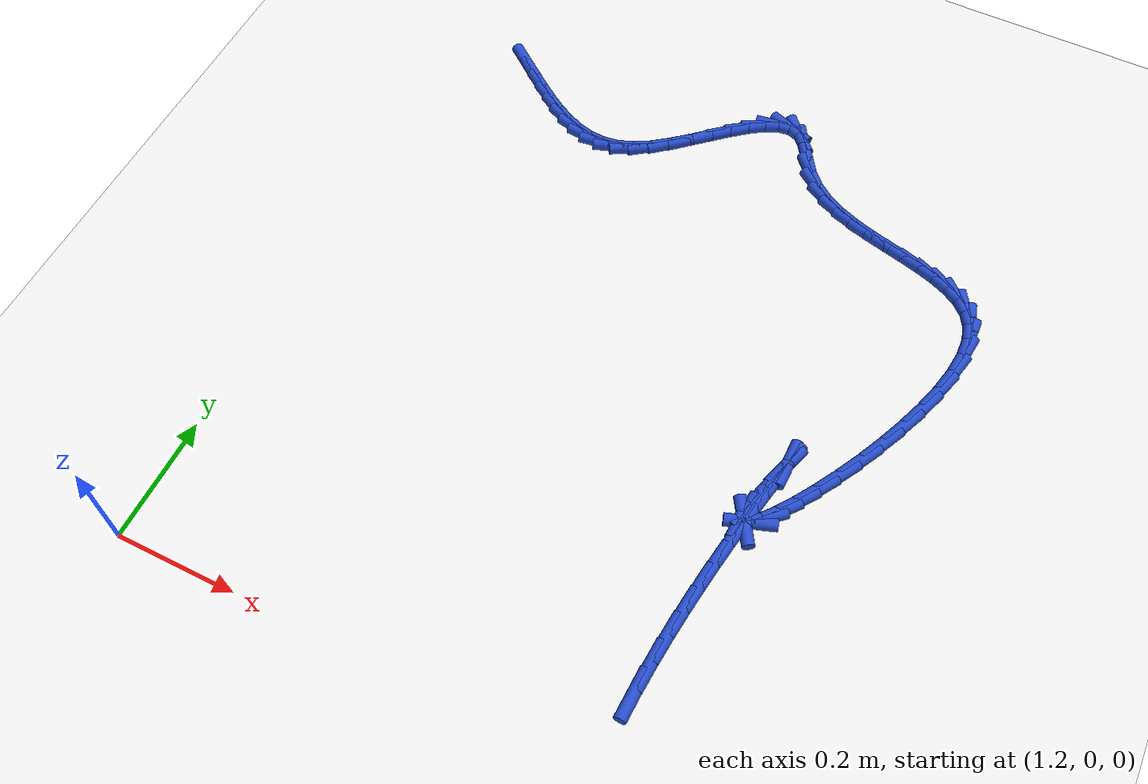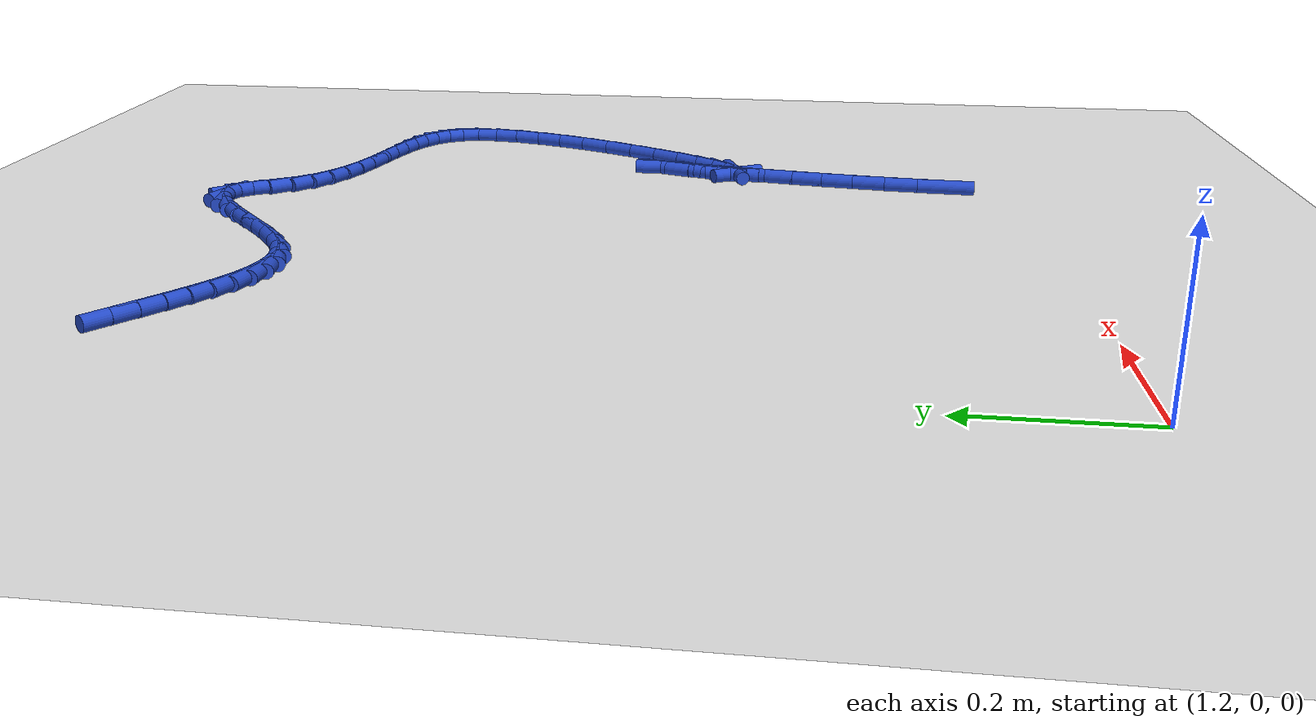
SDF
<sdf version="1.6">
 <world name="default">
  <model name="ground_plane">
   <static>1</static>
   <link name="link">
    <collision name="collision">
     <geometry><plane><normal>0 0 1</normal><size>100 100</size></plane></geometry>
     <surface><friction><ode><mu>100</mu><mu2>50</mu2></ode></friction></surface>
    </collision>
    <visual name="visual">
     <cast_shadows>0</cast_shadows>
     <geometry><plane><normal>0 0 1</normal><size>100 100</size></plane></geometry>
     <material>
      <script><uri>file://media/materials/scripts/gazebo.material</uri><name>Gazebo/WhiteGlow</name></script>
     </material>
    </visual>
   </link>
  </model>
  <model name="line">
   <link name="link_78">
    <pose>1.3200268461189721 1.0632900898511553 0.01 0 1.57 -0.6524890521754039</pose>
    <collision name="collision">
     <geometry><cylinder><radius>0.01</radius><length>0.08</length></cylinder></geometry>
    </collision>
    <visual name="visual">
     <material>
      <script><name>Gazebo/Blue</name><uri>file://media/materials/scripts/gazebo.material</uri></script>
     </material>
     <geometry><cylinder><radius>0.01</radius><length>0.08</length></cylinder></geometry>
    </visual>
   </link>
   <link name="link_79">
    <pose>1.3461349972345178 1.043339824095674 0.01 0 1.57 -0.6459319004834038</pose>
    <collision name="collision">
     <geometry><cylinder><radius>0.01</radius><length>0.08</length></cylinder></geometry>
    </collision>
    <visual name="visual">
     <material>
      <script><name>Gazebo/Blue</name><uri>file://media/materials/scripts/gazebo.material</uri></script>
     </material>
     <geometry><cylinder><radius>0.01</radius><length>0.08</length></cylinder></geometry>
    </visual>
   </link>
   <link name="link_80">
    <pose>1.371570158942668 1.0241666705875578 0.01 0 1.57 -0.6196629176166212</pose>
    <collision name="collision">
     <geometry><cylinder><radius>0.01</radius><length>0.08</length></cylinder></geometry>
    </collision>
    <visual name="visual">
     <material>
      <script><name>Gazebo/Blue</name><uri>file://media/materials/scripts/gazebo.material</uri></script>
     </material>
     <geometry><cylinder><radius>0.01</radius><length>0.08</length></cylinder></geometry>
    </visual>
   </link>
   <link name="link_81">
    <pose>1.3964961642730223 1.0063844522223258 0.01 0 1.57 -0.5706345906195713</pose>
    <collision name="collision">
     <geometry><cylinder><radius>0.01</radius><length>0.08</length></cylinder></geometry>
    </collision>
    <visual name="visual">
     <material>
      <script><name>Gazebo/Blue</name><uri>file://media/materials/scripts/gazebo.material</uri></script>
     </material>
     <geometry><cylinder><radius>0.01</radius><length>0.08</length></cylinder></geometry>
    </visual>
   </link>
   <link name="link_82">
    <pose>1.4210768462551797 0.9906069918954976 0.01 0 1.57 -0.4946036932100912</pose>
    <collision name="collision">
     <geometry><cylinder><radius>0.01</radius><length>0.08</length></cylinder></geometry>
    </collision>
    <visual name="visual">
     <material>
      <script><name>Gazebo/Blue</name><uri>file://media/materials/scripts/gazebo.material</uri></script>
     </material>
     <geometry><cylinder><radius>0.01</radius><length>0.08</length></cylinder></geometry>
    </visual>
   </link>
   <link name="link_83">
    <pose>1.445476037918739 0.9774481125025931 0.01 0 1.57 -0.3866385325265861</pose>
    <collision name="collision">
     <geometry><cylinder><radius>0.01</radius><length>0.08</length></cylinder></geometry>
    </collision>
    <visual name="visual">
     <material>
      <script><name>Gazebo/Blue</name><uri>file://media/materials/scripts/gazebo.material</uri></script>
     </material>
     <geometry><cylinder><radius>0.01</radius><length>0.08</length></cylinder></geometry>
    </visual>
   </link>
   <link name="link_84">
    <pose>1.4698575722933 0.967521636939132 0.01 0 1.57 -0.24299466918522217</pose>
    <collision name="collision">
     <geometry><cylinder><radius>0.01</radius><length>0.08</length></cylinder></geometry>
    </collision>
    <visual name="visual">
     <material>
      <script><name>Gazebo/Blue</name><uri>file://media/materials/scripts/gazebo.material</uri></script>
     </material>
     <geometry><cylinder><radius>0.01</radius><length>0.08</length></cylinder></geometry>
    </visual>
   </link>
   <link name="link_85">
    <pose>1.4943852824084614 0.9614413881006337 0.01 0 1.57 -0.06513911438292037</pose>
    <collision name="collision">
     <geometry><cylinder><radius>0.01</radius><length>0.08</length></cylinder></geometry>
    </collision>
    <visual name="visual">
     <material>
      <script><name>Gazebo/Blue</name><uri>file://media/materials/scripts/gazebo.material</uri></script>
     </material>
     <geometry><cylinder><radius>0.01</radius><length>0.08</length></cylinder></geometry>
    </visual>
   </link>
   <link name="link_86">
    <pose>1.5192230012938235 0.9598211888826181 0.01 0 1.57 0.13560904200264787</pose>
    <collision name="collision">
     <geometry><cylinder><radius>0.01</radius><length>0.08</length></cylinder></geometry>
    </collision>
    <visual name="visual">
     <material>
      <script><name>Gazebo/Blue</name><uri>file://media/materials/scripts/gazebo.material</uri></script>
     </material>
     <geometry><cylinder><radius>0.01</radius><length>0.08</length></cylinder></geometry>
    </visual>
   </link>
   <link name="link_87">
    <pose>1.544534561978984 0.9632748621806044 0.01 0 1.57 0.3387035948976082</pose>
    <collision name="collision">
     <geometry><cylinder><radius>0.01</radius><length>0.08</length></cylinder></geometry>
    </collision>
    <visual name="visual">
     <material>
      <script><name>Gazebo/Blue</name><uri>file://media/materials/scripts/gazebo.material</uri></script>
     </material>
     <geometry><cylinder><radius>0.01</radius><length>0.08</length></cylinder></geometry>
    </visual>
   </link>
   <link name="link_88">
    <pose>1.570483797493543 0.9724162308901125 0.01 0 1.57 0.5162864080129157</pose>
    <collision name="collision">
     <geometry><cylinder><radius>0.01</radius><length>0.08</length></cylinder></geometry>
    </collision>
    <visual name="visual">
     <material>
      <script><name>Gazebo/Blue</name><uri>file://media/materials/scripts/gazebo.material</uri></script>
     </material>
     <geometry><cylinder><radius>0.01</radius><length>0.08</length></cylinder></geometry>
    </visual>
   </link>
   <link name="link_89">
    <pose>1.597171404774297 0.9875652179708097 0.01 0 1.57 0.6317423334372204</pose>
    <collision name="collision">
     <geometry><cylinder><radius>0.01</radius><length>0.08</length></cylinder></geometry>
    </collision>
    <visual name="visual">
     <material>
      <script><name>Gazebo/Blue</name><uri>file://media/materials/scripts/gazebo.material</uri></script>
     </material>
     <geometry><cylinder><radius>0.01</radius><length>0.08</length></cylinder></geometry>
    </visual>
   </link>
   <link name="link_90">
    <pose>1.6243583425627053 1.0074602574212288 0.01 0 1.57 0.6962913633375232</pose>
    <collision name="collision">
     <geometry><cylinder><radius>0.01</radius><length>0.08</length></cylinder></geometry>
    </collision>
    <visual name="visual">
     <material>
      <script><name>Gazebo/Blue</name><uri>file://media/materials/scripts/gazebo.material</uri></script>
     </material>
     <geometry><cylinder><radius>0.01</radius><length>0.08</length></cylinder></geometry>
    </visual>
   </link>
   <link name="link_91">
    <pose>1.651691794757522 1.0303101587812464 0.01 0 1.57 0.7245842931786863</pose>
    <collision name="collision">
     <geometry><cylinder><radius>0.01</radius><length>0.08</length></cylinder></geometry>
    </collision>
    <visual name="visual">
     <material>
      <script><name>Gazebo/Blue</name><uri>file://media/materials/scripts/gazebo.material</uri></script>
     </material>
     <geometry><cylinder><radius>0.01</radius><length>0.08</length></cylinder></geometry>
    </visual>
   </link>
   <link name="link_92">
    <pose>1.678818863416057 1.054323350616963 0.01 0 1.57 0.7217663789422315</pose>
    <collision name="collision">
     <geometry><cylinder><radius>0.01</radius><length>0.08</length></cylinder></geometry>
    </collision>
    <visual name="visual">
     <material>
      <script><name>Gazebo/Blue</name><uri>file://media/materials/scripts/gazebo.material</uri></script>
     </material>
     <geometry><cylinder><radius>0.01</radius><length>0.08</length></cylinder></geometry>
    </visual>
   </link>
   <link name="link_93">
    <pose>1.7053866505956194 1.0777082614944802 0.01 0 1.57 0.6851246518421864</pose>
    <collision name="collision">
     <geometry><cylinder><radius>0.01</radius><length>0.08</length></cylinder></geometry>
    </collision>
    <visual name="visual">
     <material>
      <script><name>Gazebo/Blue</name><uri>file://media/materials/scripts/gazebo.material</uri></script>
     </material>
     <geometry><cylinder><radius>0.01</radius><length>0.08</length></cylinder></geometry>
    </visual>
   </link>
   <link name="link_94">
    <pose>1.7310422583535197 1.098673319979899 0.01 0 1.57 0.6018736579693608</pose>
    <collision name="collision">
     <geometry><cylinder><radius>0.01</radius><length>0.08</length></cylinder></geometry>
    </collision>
    <visual name="visual">
     <material>
      <script><name>Gazebo/Blue</name><uri>file://media/materials/scripts/gazebo.material</uri></script>
     </material>
     <geometry><cylinder><radius>0.01</radius><length>0.08</length></cylinder></geometry>
    </visual>
   </link>
   <link name="link_95">
    <pose>1.7554327887470655 1.11542695463932 0.01 0 1.57 0.4410693456882203</pose>
    <collision name="collision">
     <geometry><cylinder><radius>0.01</radius><length>0.08</length></cylinder></geometry>
    </collision>
    <visual name="visual">
     <material>
      <script><name>Gazebo/Blue</name><uri>file://media/materials/scripts/gazebo.material</uri></script>
     </material>
     <geometry><cylinder><radius>0.01</radius><length>0.08</length></cylinder></geometry>
    </visual>
   </link>
   <link name="link_96">
    <pose>1.7782053438335679 1.1261775940388445 0.01 0 1.57 0.1411622194411599</pose>
    <collision name="collision">
     <geometry><cylinder><radius>0.01</radius><length>0.08</length></cylinder></geometry>
    </collision>
    <visual name="visual">
     <material>
      <script><name>Gazebo/Blue</name><uri>file://media/materials/scripts/gazebo.material</uri></script>
     </material>
     <geometry><cylinder><radius>0.01</radius><length>0.08</length></cylinder></geometry>
    </visual>
   </link>
   <link name="link_97">
    <pose>1.7990070256703357 1.129133666744574 0.01 0 1.57 -0.3445020132725318</pose>
    <collision name="collision">
     <geometry><cylinder><radius>0.01</radius><length>0.08</length></cylinder></geometry>
    </collision>
    <visual name="visual">
     <material>
      <script><name>Gazebo/Blue</name><uri>file://media/materials/scripts/gazebo.material</uri></script>
     </material>
     <geometry><cylinder><radius>0.01</radius><length>0.08</length></cylinder></geometry>
    </visual>
   </link>
   <link name="link_98">
    <pose>1.8174849363146772 1.1225036013226084 0.01 0 1.57 -0.8250697182488265</pose>
    <collision name="collision">
     <geometry><cylinder><radius>0.01</radius><length>0.08</length></cylinder></geometry>
    </collision>
    <visual name="visual">
     <material>
      <script><name>Gazebo/Blue</name><uri>file://media/materials/scripts/gazebo.material</uri></script>
     </material>
     <geometry><cylinder><radius>0.01</radius><length>0.08</length></cylinder></geometry>
    </visual>
   </link>
   <link name="link_99">
    <pose>1.8335256061962149 1.105136913918001 0.01 0 1.57 -1.0157042291439773</pose>
    <collision name="collision">
     <geometry><cylinder><radius>0.01</radius><length>0.08</length></cylinder></geometry>
    </collision>
    <visual name="visual">
     <material>
      <script><name>Gazebo/Blue</name><uri>file://media/materials/scripts/gazebo.material</uri></script>
     </material>
     <geometry><cylinder><radius>0.01</radius><length>0.08</length></cylinder></geometry>
    </visual>
   </link>
   <link name="link_100">
    <pose>1.8487638745394925 1.0805643497289035 0.01 0 1.57 -0.9988780504687981</pose>
    <collision name="collision">
     <geometry><cylinder><radius>0.01</radius><length>0.08</length></cylinder></geometry>
    </collision>
    <visual name="visual">
     <material>
      <script><name>Gazebo/Blue</name><uri>file://media/materials/scripts/gazebo.material</uri></script>
     </material>
     <geometry><cylinder><radius>0.01</radius><length>0.08</length></cylinder></geometry>
    </visual>
   </link>
   <link name="link_101">
    <pose>1.865609951972915 1.0543927695419848 0.01 0 1.57 -0.8342507084361291</pose>
    <collision name="collision">
     <geometry><cylinder><radius>0.01</radius><length>0.08</length></cylinder></geometry>
    </collision>
    <visual name="visual">
     <material>
      <script><name>Gazebo/Blue</name><uri>file://media/materials/scripts/gazebo.material</uri></script>
     </material>
     <geometry><cylinder><radius>0.01</radius><length>0.08</length></cylinder></geometry>
    </visual>
   </link>
   <link name="link_102">
    <pose>1.8861995797914783 1.0316863346306735 0.01 0 1.57 -0.6410036862653944</pose>
    <collision name="collision">
     <geometry><cylinder><radius>0.01</radius><length>0.08</length></cylinder></geometry>
    </collision>
    <visual name="visual">
     <material>
      <script><name>Gazebo/Blue</name><uri>file://media/materials/scripts/gazebo.material</uri></script>
     </material>
     <geometry><cylinder><radius>0.01</radius><length>0.08</length></cylinder></geometry>
    </visual>
   </link>
   <link name="link_103">
    <pose>1.9106292770755546 1.0134592137585017 0.01 0 1.57 -0.4869155585262102</pose>
    <collision name="collision">
     <geometry><cylinder><radius>0.01</radius><length>0.08</length></cylinder></geometry>
    </collision>
    <visual name="visual">
     <material>
      <script><name>Gazebo/Blue</name><uri>file://media/materials/scripts/gazebo.material</uri></script>
     </material>
     <geometry><cylinder><radius>0.01</radius><length>0.08</length></cylinder></geometry>
    </visual>
   </link>
   <link name="link_104">
    <pose>1.9380874260851664 0.998921972680952 0.01 0 1.57 -0.37400254593243265</pose>
    <collision name="collision">
     <geometry><cylinder><radius>0.01</radius><length>0.08</length></cylinder></geometry>
    </collision>
    <visual name="visual">
     <material>
      <script><name>Gazebo/Blue</name><uri>file://media/materials/scripts/gazebo.material</uri></script>
     </material>
     <geometry><cylinder><radius>0.01</radius><length>0.08</length></cylinder></geometry>
    </visual>
   </link>
   <link name="link_105">
    <pose>1.96775824927101 0.9872769155739198 0.01 0 1.57 -0.2982422312502217</pose>
    <collision name="collision">
     <geometry><cylinder><radius>0.01</radius><length>0.08</length></cylinder></geometry>
    </collision>
    <visual name="visual">
     <material>
      <script><name>Gazebo/Blue</name><uri>file://media/materials/scripts/gazebo.material</uri></script>
     </material>
     <geometry><cylinder><radius>0.01</radius><length>0.08</length></cylinder></geometry>
    </visual>
   </link>
   <link name="link_106">
    <pose>1.9988259690837777 0.9777263466132997 0.01 0 1.57 -0.2551101403753533</pose>
    <collision name="collision">
     <geometry><cylinder><radius>0.01</radius><length>0.08</length></cylinder></geometry>
    </collision>
    <visual name="visual">
     <material>
      <script><name>Gazebo/Blue</name><uri>file://media/materials/scripts/gazebo.material</uri></script>
     </material>
     <geometry><cylinder><radius>0.01</radius><length>0.08</length></cylinder></geometry>
    </visual>
   </link>
   <link name="link_107">
    <pose>2.0304748079741657 0.9694725699749869 0.01 0 1.57 -0.24201445845887298</pose>
    <collision name="collision">
     <geometry><cylinder><radius>0.01</radius><length>0.08</length></cylinder></geometry>
    </collision>
    <visual name="visual">
     <material>
      <script><name>Gazebo/Blue</name><uri>file://media/materials/scripts/gazebo.material</uri></script>
     </material>
     <geometry><cylinder><radius>0.01</radius><length>0.08</length></cylinder></geometry>
    </visual>
   </link>
   <link name="link_108">
    <pose>2.0618889883928677 0.9617178898348766 0.01 0 1.57 -0.25925765828328784</pose>
    <collision name="collision">
     <geometry><cylinder><radius>0.01</radius><length>0.08</length></cylinder></geometry>
    </collision>
    <visual name="visual">
     <material>
      <script><name>Gazebo/Blue</name><uri>file://media/materials/scripts/gazebo.material</uri></script>
     </material>
     <geometry><cylinder><radius>0.01</radius><length>0.08</length></cylinder></geometry>
    </visual>
   </link>
   <link name="link_109">
    <pose>2.0922527327905787 0.9536646103688633 0.01 0 1.57 -0.3106691930839133</pose>
    <collision name="collision">
     <geometry><cylinder><radius>0.01</radius><length>0.08</length></cylinder></geometry>
    </collision>
    <visual name="visual">
     <material>
      <script><name>Gazebo/Blue</name><uri>file://media/materials/scripts/gazebo.material</uri></script>
     </material>
     <geometry><cylinder><radius>0.01</radius><length>0.08</length></cylinder></geometry>
    </visual>
   </link>
   <link name="link_110">
    <pose>2.1207502636179942 0.9445150357528425 0.01 0 1.57 -0.4042293268773208</pose>
    <collision name="collision">
     <geometry><cylinder><radius>0.01</radius><length>0.08</length></cylinder></geometry>
    </collision>
    <visual name="visual">
     <material>
      <script><name>Gazebo/Blue</name><uri>file://media/materials/scripts/gazebo.material</uri></script>
     </material>
     <geometry><cylinder><radius>0.01</radius><length>0.08</length></cylinder></geometry>
    </visual>
   </link>
   <link name="link_111">
    <pose>2.146565803325807 0.9334714701627091 0.01 0 1.57 -0.5516952630583732</pose>
    <collision name="collision">
     <geometry><cylinder><radius>0.01</radius><length>0.08</length></cylinder></geometry>
    </collision>
    <visual name="visual">
     <material>
      <script><name>Gazebo/Blue</name><uri>file://media/materials/scripts/gazebo.material</uri></script>
     </material>
     <geometry><cylinder><radius>0.01</radius><length>0.08</length></cylinder></geometry>
    </visual>
   </link>
   <link name="link_112">
    <pose>2.168883574364714 0.9197362177743584 0.01 0 1.57 -0.7632724802327792</pose>
    <collision name="collision">
     <geometry><cylinder><radius>0.01</radius><length>0.08</length></cylinder></geometry>
    </collision>
    <visual name="visual">
     <material>
      <script><name>Gazebo/Blue</name><uri>file://media/materials/scripts/gazebo.material</uri></script>
     </material>
     <geometry><cylinder><radius>0.01</radius><length>0.08</length></cylinder></geometry>
    </visual>
   </link>
   <link name="link_113">
    <pose>2.186887799185408 0.9025115827636847 0.01 0 1.57 -1.0314756871550304</pose>
    <collision name="collision">
     <geometry><cylinder><radius>0.01</radius><length>0.08</length></cylinder></geometry>
    </collision>
    <visual name="visual">
     <material>
      <script><name>Gazebo/Blue</name><uri>file://media/materials/scripts/gazebo.material</uri></script>
     </material>
     <geometry><cylinder><radius>0.01</radius><length>0.08</length></cylinder></geometry>
    </visual>
   </link>
   <link name="link_114">
    <pose>2.199762700238585 0.880999869306584 0.01 0 1.57 -1.315421879699178</pose>
    <collision name="collision">
     <geometry><cylinder><radius>0.01</radius><length>0.08</length></cylinder></geometry>
    </collision>
    <visual name="visual">
     <material>
      <script><name>Gazebo/Blue</name><uri>file://media/materials/scripts/gazebo.material</uri></script>
     </material>
     <geometry><cylinder><radius>0.01</radius><length>0.08</length></cylinder></geometry>
    </visual>
   </link>
   <link name="link_115">
    <pose>2.206703135311208 0.8544157728007566 0.01 0 1.57 -1.5455411147185274</pose>
    <collision name="collision">
     <geometry><cylinder><radius>0.01</radius><length>0.08</length></cylinder></geometry>
    </collision>
    <visual name="visual">
     <material>
      <script><name>Gazebo/Blue</name><uri>file://media/materials/scripts/gazebo.material</uri></script>
     </material>
     <geometry><cylinder><radius>0.01</radius><length>0.08</length></cylinder></geometry>
    </visual>
   </link>
   <link name="link_116">
    <pose>2.207504946082009 0.8226741944968848 0.01 0 1.57 1.4426109005076286</pose>
    <collision name="collision">
     <geometry><cylinder><radius>0.01</radius><length>0.08</length></cylinder></geometry>
    </collision>
    <visual name="visual">
     <material>
      <script><name>Gazebo/Blue</name><uri>file://media/materials/scripts/gazebo.material</uri></script>
     </material>
     <geometry><cylinder><radius>0.01</radius><length>0.08</length></cylinder></geometry>
    </visual>
   </link>
   <link name="link_117">
    <pose>2.2028747511127036 0.7867511810656314 0.01 0 1.57 1.337431334722782</pose>
    <collision name="collision">
     <geometry><cylinder><radius>0.01</radius><length>0.08</length></cylinder></geometry>
    </collision>
    <visual name="visual">
     <material>
      <script><name>Gazebo/Blue</name><uri>file://media/materials/scripts/gazebo.material</uri></script>
     </material>
     <geometry><cylinder><radius>0.01</radius><length>0.08</length></cylinder></geometry>
    </visual>
   </link>
   <link name="link_118">
    <pose>2.1935951395748035 0.7477112924745345 0.01 0 1.57 1.261161071855949</pose>
    <collision name="collision">
     <geometry><cylinder><radius>0.01</radius><length>0.08</length></cylinder></geometry>
    </collision>
    <visual name="visual">
     <material>
      <script><name>Gazebo/Blue</name><uri>file://media/materials/scripts/gazebo.material</uri></script>
     </material>
     <geometry><cylinder><radius>0.01</radius><length>0.08</length></cylinder></geometry>
    </visual>
   </link>
   <link name="link_119">
    <pose>2.1804487006398183 0.7066190886911354 0.01 0 1.57 1.2026689516204563</pose>
    <collision name="collision">
     <geometry><cylinder><radius>0.01</radius><length>0.08</length></cylinder></geometry>
    </collision>
    <visual name="visual">
     <material>
      <script><name>Gazebo/Blue</name><uri>file://media/materials/scripts/gazebo.material</uri></script>
     </material>
     <geometry><cylinder><radius>0.01</radius><length>0.08</length></cylinder></geometry>
    </visual>
   </link>
   <link name="link_120">
    <pose>2.1642180234792576 0.6645391296829734 0.01 0 1.57 1.1552738823661313</pose>
    <collision name="collision">
     <geometry><cylinder><radius>0.01</radius><length>0.08</length></cylinder></geometry>
    </collision>
    <visual name="visual">
     <material>
      <script><name>Gazebo/Blue</name><uri>file://media/materials/scripts/gazebo.material</uri></script>
     </material>
     <geometry><cylinder><radius>0.01</radius><length>0.08</length></cylinder></geometry>
    </visual>
   </link>
   <link name="link_121">
    <pose>2.1456856972646294 0.6225359754175885 0.01 0 1.57 1.1146063797815084</pose>
    <collision name="collision">
     <geometry><cylinder><radius>0.01</radius><length>0.08</length></cylinder></geometry>
    </collision>
    <visual name="visual">
     <material>
      <script><name>Gazebo/Blue</name><uri>file://media/materials/scripts/gazebo.material</uri></script>
     </material>
     <geometry><cylinder><radius>0.01</radius><length>0.08</length></cylinder></geometry>
    </visual>
   </link>
   <link name="link_122">
    <pose>2.1256343111674467 0.581674185862521 0.01 0 1.57 1.0773933736082426</pose>
    <collision name="collision">
     <geometry><cylinder><radius>0.01</radius><length>0.08</length></cylinder></geometry>
    </collision>
    <visual name="visual">
     <material>
      <script><name>Gazebo/Blue</name><uri>file://media/materials/scripts/gazebo.material</uri></script>
     </material>
     <geometry><cylinder><radius>0.01</radius><length>0.08</length></cylinder></geometry>
    </visual>
   </link>
   <link name="link_123">
    <pose>2.104846454359217 0.5430183209853104 0.01 0 1.57 1.0406103279412506</pose>
    <collision name="collision">
     <geometry><cylinder><radius>0.01</radius><length>0.08</length></cylinder></geometry>
    </collision>
    <visual name="visual">
     <material>
      <script><name>Gazebo/Blue</name><uri>file://media/materials/scripts/gazebo.material</uri></script>
     </material>
     <geometry><cylinder><radius>0.01</radius><length>0.08</length></cylinder></geometry>
    </visual>
   </link>
   <link name="link_124">
    <pose>2.0841047160114523 0.5076329407534974 0.01 0 1.57 1.0005511523506996</pose>
    <collision name="collision">
     <geometry><cylinder><radius>0.01</radius><length>0.08</length></cylinder></geometry>
    </collision>
    <visual name="visual">
     <material>
      <script><name>Gazebo/Blue</name><uri>file://media/materials/scripts/gazebo.material</uri></script>
     </material>
     <geometry><cylinder><radius>0.01</radius><length>0.08</length></cylinder></geometry>
    </visual>
   </link>
   <link name="link_125">
    <pose>2.06419168529566 0.4765826051346204 0.01 0 1.57 0.9510689238045408</pose>
    <collision name="collision">
     <geometry><cylinder><radius>0.01</radius><length>0.08</length></cylinder></geometry>
    </collision>
    <visual name="visual">
     <material>
      <script><name>Gazebo/Blue</name><uri>file://media/materials/scripts/gazebo.material</uri></script>
     </material>
     <geometry><cylinder><radius>0.01</radius><length>0.08</length></cylinder></geometry>
    </visual>
   </link>
   <link name="link_126">
    <pose>2.0458899513833506 0.4509318740962204 0.01 0 1.57 0.878553412855046</pose>
    <collision name="collision">
     <geometry><cylinder><radius>0.01</radius><length>0.08</length></cylinder></geometry>
    </collision>
    <visual name="visual">
     <material>
      <script><name>Gazebo/Blue</name><uri>file://media/materials/scripts/gazebo.material</uri></script>
     </material>
     <geometry><cylinder><radius>0.01</radius><length>0.08</length></cylinder></geometry>
    </visual>
   </link>
   <link name="link_127">
    <pose>2.029982103446035 0.4317453076058369 0.01 0 1.57 0.7414099365345411</pose>
    <collision name="collision">
     <geometry><cylinder><radius>0.01</radius><length>0.08</length></cylinder></geometry>
    </collision>
    <visual name="visual">
     <material>
      <script><name>Gazebo/Blue</name><uri>file://media/materials/scripts/gazebo.material</uri></script>
     </material>
     <geometry><cylinder><radius>0.01</radius><length>0.08</length></cylinder></geometry>
    </visual>
   </link>
   <link name="link_128">
    <pose>2.017250730655222 0.42008746563101 0.01 0 1.57 0.3360907127938904</pose>
    <collision name="collision">
     <geometry><cylinder><radius>0.01</radius><length>0.08</length></cylinder></geometry>
    </collision>
    <visual name="visual">
     <material>
      <script><name>Gazebo/Blue</name><uri>file://media/materials/scripts/gazebo.material</uri></script>
     </material>
     <geometry><cylinder><radius>0.01</radius><length>0.08</length></cylinder></geometry>
    </visual>
   </link>
   <link name="link_129">
    <pose>2.0084784221824217 0.41702290813927956 0.01 0 1.57 -1.0220896815422122</pose>
    <collision name="collision">
     <geometry><cylinder><radius>0.01</radius><length>0.08</length></cylinder></geometry>
    </collision>
    <visual name="visual">
     <material>
      <script><name>Gazebo/Blue</name><uri>file://media/materials/scripts/gazebo.material</uri></script>
     </material>
     <geometry><cylinder><radius>0.01</radius><length>0.08</length></cylinder></geometry>
    </visual>
   </link>
   <link name="link_130">
    <pose>2.0044477671991436 0.4236161950981855 0.01 0 1.57 1.4847529848974095</pose>
    <collision name="collision">
     <geometry><cylinder><radius>0.01</radius><length>0.08</length></cylinder></geometry>
    </collision>
    <visual name="visual">
     <material>
      <script><name>Gazebo/Blue</name><uri>file://media/materials/scripts/gazebo.material</uri></script>
     </material>
     <geometry><cylinder><radius>0.01</radius><length>0.08</length></cylinder></geometry>
    </visual>
   </link>
   <link name="link_131">
    <pose>2.005941354876898 0.4409318864752677 0.01 0 1.57 1.3228453114978371</pose>
    <collision name="collision">
     <geometry><cylinder><radius>0.01</radius><length>0.08</length></cylinder></geometry>
    </collision>
    <visual name="visual">
     <material>
      <script><name>Gazebo/Blue</name><uri>file://media/materials/scripts/gazebo.material</uri></script>
     </material>
     <geometry><cylinder><radius>0.01</radius><length>0.08</length></cylinder></geometry>
    </visual>
   </link>
   <link name="link_132">
    <pose>2.0127874190386694 0.46797427519075396 0.01 0 1.57 1.2862570661377455</pose>
    <collision name="collision">
     <geometry><cylinder><radius>0.01</radius><length>0.08</length></cylinder></geometry>
    </collision>
    <visual name="visual">
     <material>
      <script><name>Gazebo/Blue</name><uri>file://media/materials/scripts/gazebo.material</uri></script>
     </material>
     <geometry><cylinder><radius>0.01</radius><length>0.08</length></cylinder></geometry>
    </visual>
   </link>
   <link name="link_133">
    <pose>2.0205776281807477 0.4946097104363076 0.01 0 1.57 1.284648860940813</pose>
    <collision name="collision">
     <geometry><cylinder><radius>0.01</radius><length>0.08</length></cylinder></geometry>
    </collision>
    <visual name="visual">
     <material>
      <script><name>Gazebo/Blue</name><uri>file://media/materials/scripts/gazebo.material</uri></script>
     </material>
     <geometry><cylinder><radius>0.01</radius><length>0.08</length></cylinder></geometry>
    </visual>
   </link>
   <link name="link_134">
    <pose>2.026240387520565 0.5138562647752833 0.01 0 1.57 1.2797944204410414</pose>
    <collision name="collision">
     <geometry><cylinder><radius>0.01</radius><length>0.08</length></cylinder></geometry>
    </collision>
    <visual name="visual">
     <material>
      <script><name>Gazebo/Blue</name><uri>file://media/materials/scripts/gazebo.material</uri></script>
     </material>
     <geometry><cylinder><radius>0.01</radius><length>0.08</length></cylinder></geometry>
    </visual>
   </link>
   <link name="link_135">
    <pose>2.0297967452396253 0.5257304129483511 0.01 0 1.57 1.2471342441266347</pose>
    <collision name="collision">
     <geometry><cylinder><radius>0.01</radius><length>0.08</length></cylinder></geometry>
    </collision>
    <visual name="visual">
     <material>
      <script><name>Gazebo/Blue</name><uri>file://media/materials/scripts/gazebo.material</uri></script>
     </material>
     <geometry><cylinder><radius>0.01</radius><length>0.08</length></cylinder></geometry>
    </visual>
   </link>
   <link name="link_136">
    <pose>2.031453192515019 0.5306682718198866 0.01 0 1.57 1.5471358449709052</pose>
    <collision name="collision">
     <geometry><cylinder><radius>0.01</radius><length>0.08</length></cylinder></geometry>
    </collision>
    <visual name="visual">
     <material>
      <script><name>Gazebo/Blue</name><uri>file://media/materials/scripts/gazebo.material</uri></script>
     </material>
     <geometry><cylinder><radius>0.01</radius><length>0.08</length></cylinder></geometry>
    </visual>
   </link>
   <link name="link_137">
    <pose>2.0314162205238384 0.5291059582542652 0.01 0 1.57 1.3735739760193846</pose>
    <collision name="collision">
     <geometry><cylinder><radius>0.01</radius><length>0.08</length></cylinder></geometry>
    </collision>
    <visual name="visual">
     <material>
      <script><name>Gazebo/Blue</name><uri>file://media/materials/scripts/gazebo.material</uri></script>
     </material>
     <geometry><cylinder><radius>0.01</radius><length>0.08</length></cylinder></geometry>
    </visual>
   </link>
   <link name="link_138">
    <pose>2.0298923204431754 0.5214795891158626 0.01 0 1.57 1.3622920326905343</pose>
    <collision name="collision">
     <geometry><cylinder><radius>0.01</radius><length>0.08</length></cylinder></geometry>
    </collision>
    <visual name="visual">
     <material>
      <script><name>Gazebo/Blue</name><uri>file://media/materials/scripts/gazebo.material</uri></script>
     </material>
     <geometry><cylinder><radius>0.01</radius><length>0.08</length></cylinder></geometry>
    </visual>
   </link>
   <link name="link_139">
    <pose>2.027087983450122 0.5082252812690542 0.01 0 1.57 1.3635655366553716</pose>
    <collision name="collision">
     <geometry><cylinder><radius>0.01</radius><length>0.08</length></cylinder></geometry>
    </collision>
    <visual name="visual">
     <material>
      <script><name>Gazebo/Blue</name><uri>file://media/materials/scripts/gazebo.material</uri></script>
     </material>
     <geometry><cylinder><radius>0.01</radius><length>0.08</length></cylinder></geometry>
    </visual>
   </link>
   <link name="link_140">
    <pose>2.023209700721769 0.4897791515782161 0.01 0 1.57 1.3690378104692258</pose>
    <collision name="collision">
     <geometry><cylinder><radius>0.01</radius><length>0.08</length></cylinder></geometry>
    </collision>
    <visual name="visual">
     <material>
      <script><name>Gazebo/Blue</name><uri>file://media/materials/scripts/gazebo.material</uri></script>
     </material>
     <geometry><cylinder><radius>0.01</radius><length>0.08</length></cylinder></geometry>
    </visual>
   </link>
   <link name="link_141">
    <pose>2.01846396343521 0.4665773169077234 0.01 0 1.57 1.3768124482271171</pose>
    <collision name="collision">
     <geometry><cylinder><radius>0.01</radius><length>0.08</length></cylinder></geometry>
    </collision>
    <visual name="visual">
     <material>
      <script><name>Gazebo/Blue</name><uri>file://media/materials/scripts/gazebo.material</uri></script>
     </material>
     <geometry><cylinder><radius>0.01</radius><length>0.08</length></cylinder></geometry>
    </visual>
   </link>
   <link name="link_142">
    <pose>2.0130572627675356 0.43905589412195195 0.01 0 1.57 1.386286577261743</pose>
    <collision name="collision">
     <geometry><cylinder><radius>0.01</radius><length>0.08</length></cylinder></geometry>
    </collision>
    <visual name="visual">
     <material>
      <script><name>Gazebo/Blue</name><uri>file://media/materials/scripts/gazebo.material</uri></script>
     </material>
     <geometry><cylinder><radius>0.01</radius><length>0.08</length></cylinder></geometry>
    </visual>
   </link>
   <link name="link_143">
    <pose>2.007196089895837 0.4076510000852771 0.01 0 1.57 1.397271984173314</pose>
    <collision name="collision">
     <geometry><cylinder><radius>0.01</radius><length>0.08</length></cylinder></geometry>
    </collision>
    <visual name="visual">
     <material>
      <script><name>Gazebo/Blue</name><uri>file://media/materials/scripts/gazebo.material</uri></script>
     </material>
     <geometry><cylinder><radius>0.01</radius><length>0.08</length></cylinder></geometry>
    </visual>
   </link>
   <link name="link_144">
    <pose>2.001086935997207 0.3727987516620746 0.01 0 1.57 1.4097603294074215</pose>
    <collision name="collision">
     <geometry><cylinder><radius>0.01</radius><length>0.08</length></cylinder></geometry>
    </collision>
    <visual name="visual">
     <material>
      <script><name>Gazebo/Blue</name><uri>file://media/materials/scripts/gazebo.material</uri></script>
     </material>
     <geometry><cylinder><radius>0.01</radius><length>0.08</length></cylinder></geometry>
    </visual>
   </link>
   <link name="link_145">
    <pose>1.9949362922487381 0.33493526571671994 0.01 0 1.57 1.4238453087031047</pose>
    <collision name="collision">
     <geometry><cylinder><radius>0.01</radius><length>0.08</length></cylinder></geometry>
    </collision>
    <visual name="visual">
     <material>
      <script><name>Gazebo/Blue</name><uri>file://media/materials/scripts/gazebo.material</uri></script>
     </material>
     <geometry><cylinder><radius>0.01</radius><length>0.08</length></cylinder></geometry>
    </visual>
   </link>
   <link name="link_146">
    <pose>1.9889506498275202 0.2944966591135888 0.01 0 1.57 1.4396957597615023</pose>
    <collision name="collision">
     <geometry><cylinder><radius>0.01</radius><length>0.08</length></cylinder></geometry>
    </collision>
    <visual name="visual">
     <material>
      <script><name>Gazebo/Blue</name><uri>file://media/materials/scripts/gazebo.material</uri></script>
     </material>
     <geometry><cylinder><radius>0.01</radius><length>0.08</length></cylinder></geometry>
    </visual>
   </link>
   <link name="link_147">
    <pose>1.9833364999106462 0.2519190487170569 0.01 0 1.57 1.4575496646583443</pose>
    <collision name="collision">
     <geometry><cylinder><radius>0.01</radius><length>0.08</length></cylinder></geometry>
    </collision>
    <visual name="visual">
     <material>
      <script><name>Gazebo/Blue</name><uri>file://media/materials/scripts/gazebo.material</uri></script>
     </material>
     <geometry><cylinder><radius>0.01</radius><length>0.08</length></cylinder></geometry>
    </visual>
   </link>
   <link name="link_148">
    <pose>1.9783003336752083 0.20763855139149964 0.01 0 1.57 1.477719253870336</pose>
    <collision name="collision">
     <geometry><cylinder><radius>0.01</radius><length>0.08</length></cylinder></geometry>
    </collision>
    <visual name="visual">
     <material>
      <script><name>Gazebo/Blue</name><uri>file://media/materials/scripts/gazebo.material</uri></script>
     </material>
     <geometry><cylinder><radius>0.01</radius><length>0.08</length></cylinder></geometry>
    </visual>
   </link>
   <link name="link_149">
    <pose>1.9740486422982977 0.1620912840012927 0.01 0 1.57 1.5006041232326066</pose>
    <collision name="collision">
     <geometry><cylinder><radius>0.01</radius><length>0.08</length></cylinder></geometry>
    </collision>
    <visual name="visual">
     <material>
      <script><name>Gazebo/Blue</name><uri>file://media/materials/scripts/gazebo.material</uri></script>
     </material>
     <geometry><cylinder><radius>0.01</radius><length>0.08</length></cylinder></geometry>
    </visual>
   </link>
   <link name="link_150">
    <pose>1.970787916957006 0.11571336341081154 0.01 0 1.57 1.5267120197515738</pose>
    <collision name="collision">
     <geometry><cylinder><radius>0.01</radius><length>0.08</length></cylinder></geometry>
    </collision>
    <visual name="visual">
     <material>
      <script><name>Gazebo/Blue</name><uri>file://media/materials/scripts/gazebo.material</uri></script>
     </material>
     <geometry><cylinder><radius>0.01</radius><length>0.08</length></cylinder></geometry>
    </visual>
   </link>
  </model>
 </world>
</sdf>
